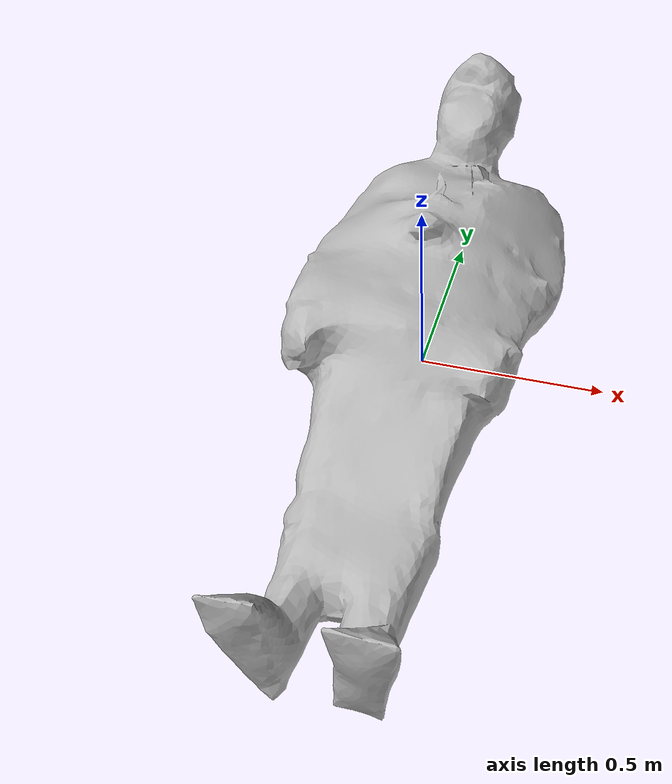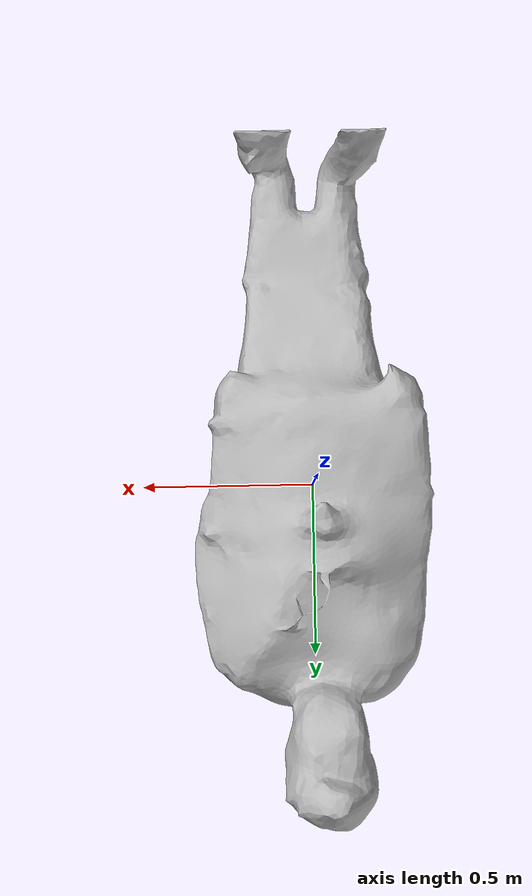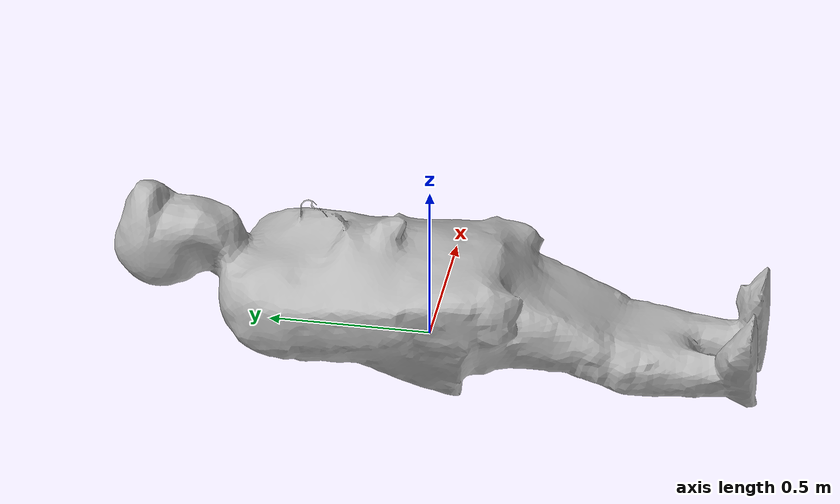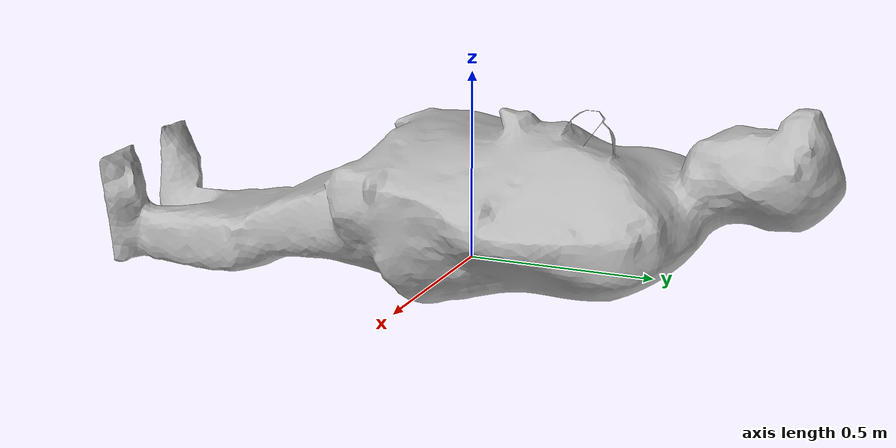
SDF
<?xml version='1.0'?>
<sdf version='1.7'>
  <model name='kare-man-2'>
    <link name='link'>
      <self_collide>0</self_collide>
      <enable_wind>0</enable_wind>
      <kinematic>0</kinematic>
      <pose>0 0 0 0 -0 0</pose>
      <visual name='visual'>
        <geometry>
          <mesh>
            <scale>2 2 2</scale>
            <uri>model://kare-man/meshes/kare-man.obj</uri>
          </mesh>
        </geometry>
        <material>
          <shader type='pixel'/>
        </material>
        <pose>0 0 0 0 -0 0</pose>
        <transparency>0</transparency>
        <cast_shadows>1</cast_shadows>
      </visual>
      <collision name='collision'>
        <laser_retro>0</laser_retro>
        <max_contacts>10</max_contacts>
        <pose>0 0 0 0 -0 0</pose>
        <geometry>
          <mesh>
            <uri>/home/amadeus/model_editor_models/kare-man/meshes/kare-man.obj</uri>
            <scale>2 2 2</scale>
          </mesh>
        </geometry>
        <surface>
          <friction>
            <ode>
              <mu>1</mu>
              <mu2>1</mu2>
              <fdir1>0 0 0</fdir1>
              <slip1>0</slip1>
              <slip2>0</slip2>
            </ode>
            <torsional>
              <coefficient>1</coefficient>
              <patch_radius>0</patch_radius>
              <surface_radius>0</surface_radius>
              <use_patch_radius>1</use_patch_radius>
              <ode>
                <slip>0</slip>
              </ode>
            </torsional>
          </friction>
          <bounce>
            <restitution_coefficient>0</restitution_coefficient>
            <threshold>1e+06</threshold>
          </bounce>
          <contact>
            <collide_without_contact>0</collide_without_contact>
            <collide_without_contact_bitmask>1</collide_without_contact_bitmask>
            <collide_bitmask>1</collide_bitmask>
            <ode>
              <soft_cfm>0</soft_cfm>
              <soft_erp>0.2</soft_erp>
              <kp>1e+13</kp>
              <kd>1</kd>
              <max_vel>0.01</max_vel>
              <min_depth>0</min_depth>
            </ode>
            <bullet>
              <split_impulse>1</split_impulse>
              <split_impulse_penetration_threshold>-0.01</split_impulse_penetration_threshold>
              <soft_cfm>0</soft_cfm>
              <soft_erp>0.2</soft_erp>
              <kp>1e+13</kp>
              <kd>1</kd>
            </bullet>
          </contact>
        </surface>
      </collision>
    </link>
    <static>0</static>
    <allow_auto_disable>0</allow_auto_disable>
    <plugin name='man_slide' filename='/home/amadeus/Downloads/dev_ws/src/articubot_one/worlds/build/libmodel_move.so'/>
  </model>
</sdf>
